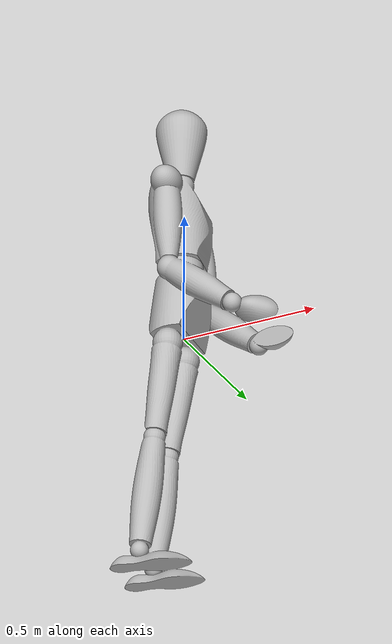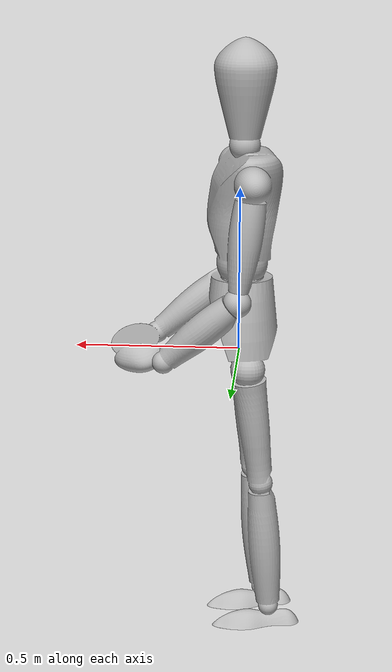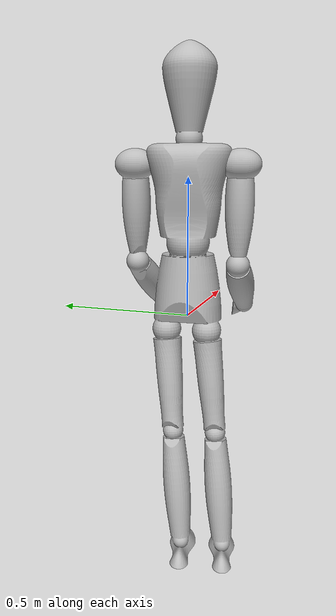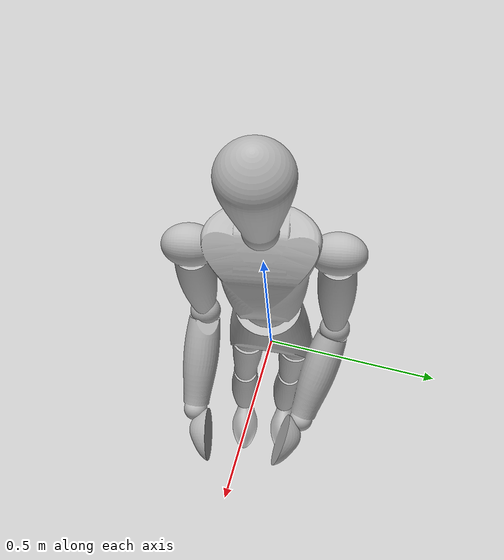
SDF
<?xml version="1.0" encoding="utf-8"?>
<sdf version='1.6'>
  <model name='bruno'>
    <link name='base_link'>
      <pose frame=''>0 0 0 0 0 -1.57</pose>
      <inertial>
        <pose frame=''>0 0 0 0 -0 0</pose>
        <mass>46.35</mass>
        <inertia>
          <ixx>0.362119358202442</ixx>
          <ixy>0.00828084225263522</ixy>
          <ixz>0.00383627625279934</ixz>
          <iyy>0.185987537912041</iyy>
          <iyz>-0.00376793274811961</iyz>
          <izz>0.388905702220669</izz>
        </inertia>
      </inertial>
      <collision name='base_link_collision'>
        <pose frame=''>0 0 0.025 0 -0 0</pose>
        <geometry>
            <box>
              <size>0.5 0.5 1.85</size>
            </box>
        </geometry>
      </collision>

      <visual name='base_link_visual'>
        <pose frame=''>0.17 0.312 0.38 0 -0 0</pose>
        <geometry>
          <mesh>
            <scale>1 1 1</scale>
            <uri>model://bruno/meshes/base_link.STL</uri>
          </mesh>
        </geometry>
      </visual>
      <plugin name="gazebo_ros_control" filename="libgazebo_ros_control.so">
        <robotNamespace>/bruno</robotNamespace>
      </plugin>
    </link>
    <link name='/imu_link'>
      <pose frame=''>0 0 0 0 -0 0</pose>
      <inertial>
        <pose frame=''>0 0 0 0 -0 0</pose>
        <mass>0.015</mass>
        <inertia>
          <ixx>1e-05</ixx>
          <ixy>0</ixy>
          <ixz>0</ixz>
          <iyy>1e-05</iyy>
          <iyz>0</iyz>
          <izz>1e-05</izz>
        </inertia>
      </inertial>
    </link>
    <joint name='/imu_joint' type='revolute'>
      <child>/imu_link</child>
      <parent>base_link</parent>
      <axis>
        <xyz>1 0 0</xyz>
        <limit>
          <lower>0</lower>
          <upper>0</upper>
          <effort>0</effort>
          <velocity>0</velocity>
        </limit>
        <dynamics>
          <spring_reference>0</spring_reference>
          <spring_stiffness>0</spring_stiffness>
        </dynamics>
        <use_parent_model_frame>1</use_parent_model_frame>
      </axis>
    </joint>
  </model>
</sdf>
